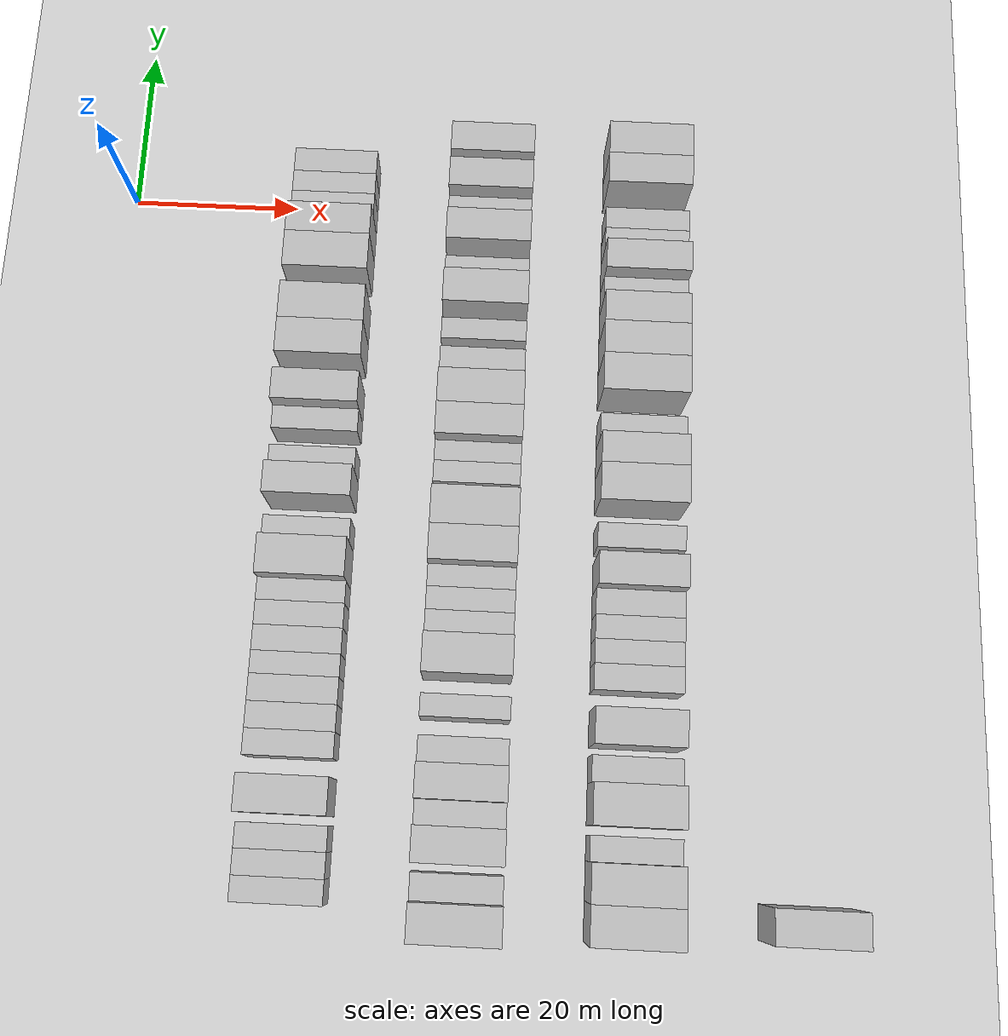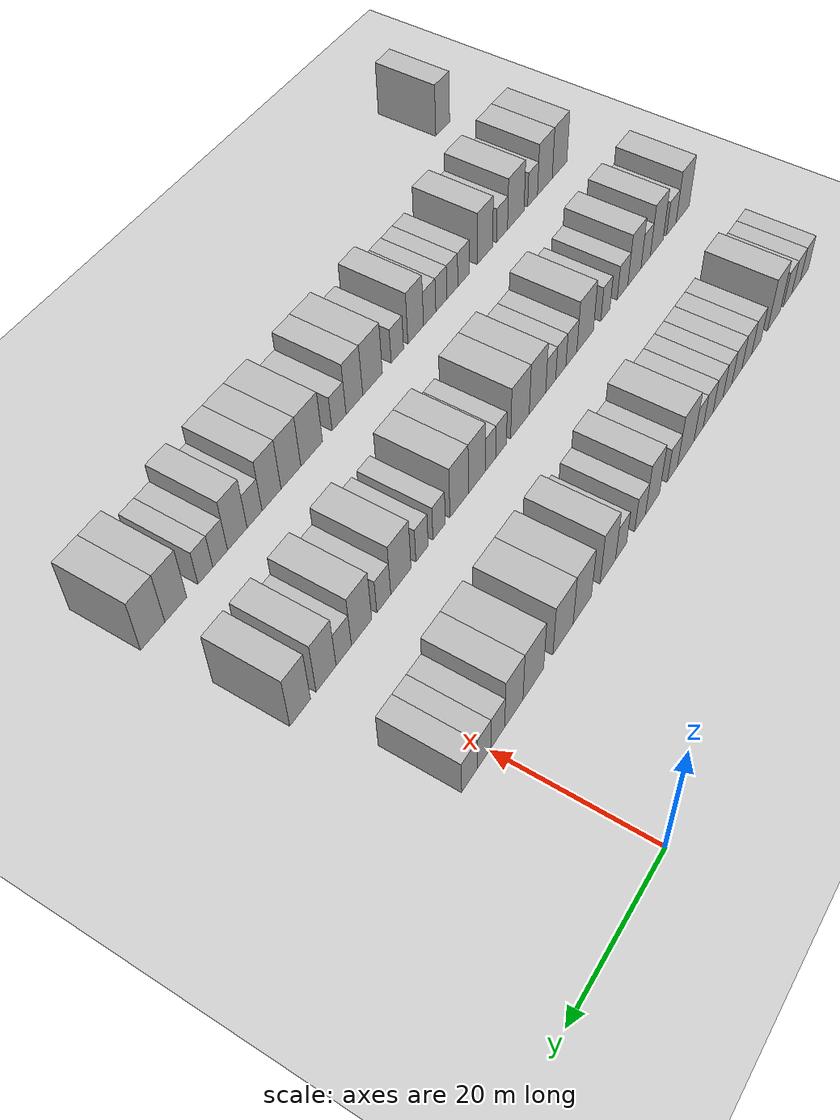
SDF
<sdf version="1.6">
 <world name="default">
  <include><name>ground_plane_1</name><uri>model://HANNAS_ground_plane</uri></include>
  <model name="building_60">
   <static>1</static>
   <pose>25.0000 -80.9285 0 0.000000 0.000000 0.000000</pose>
   <link name="link">
    <pose>0 0 3.00 0 0 0</pose>
    <collision name="collision"><geometry><box><size>10.0000 2.7186 6.0000</size></box></geometry></collision>
    <visual name="visual">
     <cast_shadows>0</cast_shadows>
     <geometry><box><size>10.0000 2.7186 6.0000</size></box></geometry>
     <material>
      <script>
       <uri>model://HANNAS_wall/materials/scripts</uri>
       <uri>model://HANNAS_wall/materials/textures</uri>
       <name>vrc/HANNAS_wall</name>
      </script>
     </material>
    </visual>
   </link>
  </model>
  <model name="building_61">
   <static>1</static>
   <pose>25.0000 -78.1866 0 0.000000 0.000000 0.000000</pose>
   <link name="link">
    <pose>0 0 3.00 0 0 0</pose>
    <collision name="collision"><geometry><box><size>10.0000 2.7652 6.0000</size></box></geometry></collision>
    <visual name="visual">
     <cast_shadows>0</cast_shadows>
     <geometry><box><size>10.0000 2.7652 6.0000</size></box></geometry>
     <material>
      <script>
       <uri>model://HANNAS_wall/materials/scripts</uri>
       <uri>model://HANNAS_wall/materials/textures</uri>
       <name>vrc/HANNAS_wall</name>
      </script>
     </material>
    </visual>
   </link>
  </model>
  <model name="building_62">
   <static>1</static>
   <pose>25.0000 -75.4488 0 0.000000 0.000000 0.000000</pose>
   <link name="link">
    <pose>0 0 3.00 0 0 0</pose>
    <collision name="collision"><geometry><box><size>10.0000 2.7102 6.0000</size></box></geometry></collision>
    <visual name="visual">
     <cast_shadows>0</cast_shadows>
     <geometry><box><size>10.0000 2.7102 6.0000</size></box></geometry>
     <material>
      <script>
       <uri>model://HANNAS_wall/materials/scripts</uri>
       <uri>model://HANNAS_wall/materials/textures</uri>
       <name>vrc/HANNAS_wall</name>
      </script>
     </material>
    </visual>
   </link>
  </model>
  <model name="building_63">
   <static>1</static>
   <pose>25.0000 -71.0811 0 0.000000 0.000000 0.000000</pose>
   <link name="link">
    <pose>0 0 4.50 0 0 0</pose>
    <collision name="collision"><geometry><box><size>10.0000 4.0253 9.0000</size></box></geometry></collision>
    <visual name="visual">
     <cast_shadows>0</cast_shadows>
     <geometry><box><size>10.0000 4.0253 9.0000</size></box></geometry>
     <material>
      <script>
       <uri>model://HANNAS_wall/materials/scripts</uri>
       <uri>model://HANNAS_wall/materials/textures</uri>
       <name>vrc/HANNAS_wall</name>
      </script>
     </material>
    </visual>
   </link>
  </model>
  <model name="building_64">
   <static>1</static>
   <pose>25.0000 -65.6351 0 0.000000 0.000000 0.000000</pose>
   <link name="link">
    <pose>0 0 3.00 0 0 0</pose>
    <collision name="collision"><geometry><box><size>10.0000 2.8665 6.0000</size></box></geometry></collision>
    <visual name="visual">
     <cast_shadows>0</cast_shadows>
     <geometry><box><size>10.0000 2.8665 6.0000</size></box></geometry>
     <material>
      <script>
       <uri>model://HANNAS_wall/materials/scripts</uri>
       <uri>model://HANNAS_wall/materials/textures</uri>
       <name>vrc/HANNAS_wall</name>
      </script>
     </material>
    </visual>
   </link>
  </model>
  <model name="building_65">
   <static>1</static>
   <pose>25.0000 -62.7355 0 0.000000 0.000000 0.000000</pose>
   <link name="link">
    <pose>0 0 3.00 0 0 0</pose>
    <collision name="collision"><geometry><box><size>10.0000 2.9329 6.0000</size></box></geometry></collision>
    <visual name="visual">
     <cast_shadows>0</cast_shadows>
     <geometry><box><size>10.0000 2.9329 6.0000</size></box></geometry>
     <material>
      <script>
       <uri>model://HANNAS_wall/materials/scripts</uri>
       <uri>model://HANNAS_wall/materials/textures</uri>
       <name>vrc/HANNAS_wall</name>
      </script>
     </material>
    </visual>
   </link>
  </model>
  <model name="building_66">
   <static>1</static>
   <pose>25.0000 -59.7765 0 0.000000 0.000000 0.000000</pose>
   <link name="link">
    <pose>0 0 3.00 0 0 0</pose>
    <collision name="collision"><geometry><box><size>10.0000 2.9850 6.0000</size></box></geometry></collision>
    <visual name="visual">
     <cast_shadows>0</cast_shadows>
     <geometry><box><size>10.0000 2.9850 6.0000</size></box></geometry>
     <material>
      <script>
       <uri>model://HANNAS_wall/materials/scripts</uri>
       <uri>model://HANNAS_wall/materials/textures</uri>
       <name>vrc/HANNAS_wall</name>
      </script>
     </material>
    </visual>
   </link>
  </model>
  <model name="building_67">
   <static>1</static>
   <pose>25.0000 -57.0158 0 0.000000 0.000000 0.000000</pose>
   <link name="link">
    <pose>0 0 3.00 0 0 0</pose>
    <collision name="collision"><geometry><box><size>10.0000 2.5364 6.0000</size></box></geometry></collision>
    <visual name="visual">
     <cast_shadows>0</cast_shadows>
     <geometry><box><size>10.0000 2.5364 6.0000</size></box></geometry>
     <material>
      <script>
       <uri>model://HANNAS_wall/materials/scripts</uri>
       <uri>model://HANNAS_wall/materials/textures</uri>
       <name>vrc/HANNAS_wall</name>
      </script>
     </material>
    </visual>
   </link>
  </model>
  <model name="building_68">
   <static>1</static>
   <pose>25.0000 -54.3093 0 0.000000 0.000000 0.000000</pose>
   <link name="link">
    <pose>0 0 3.00 0 0 0</pose>
    <collision name="collision"><geometry><box><size>10.0000 2.8766 6.0000</size></box></geometry></collision>
    <visual name="visual">
     <cast_shadows>0</cast_shadows>
     <geometry><box><size>10.0000 2.8766 6.0000</size></box></geometry>
     <material>
      <script>
       <uri>model://HANNAS_wall/materials/scripts</uri>
       <uri>model://HANNAS_wall/materials/textures</uri>
       <name>vrc/HANNAS_wall</name>
      </script>
     </material>
    </visual>
   </link>
  </model>
  <model name="building_69">
   <static>1</static>
   <pose>25.0000 -51.4867 0 0.000000 0.000000 0.000000</pose>
   <link name="link">
    <pose>0 0 3.00 0 0 0</pose>
    <collision name="collision"><geometry><box><size>10.0000 2.7686 6.0000</size></box></geometry></collision>
    <visual name="visual">
     <cast_shadows>0</cast_shadows>
     <geometry><box><size>10.0000 2.7686 6.0000</size></box></geometry>
     <material>
      <script>
       <uri>model://HANNAS_wall/materials/scripts</uri>
       <uri>model://HANNAS_wall/materials/textures</uri>
       <name>vrc/HANNAS_wall</name>
      </script>
     </material>
    </visual>
   </link>
  </model>
  <model name="building_70">
   <static>1</static>
   <pose>25.0000 -48.8435 0 0.000000 0.000000 0.000000</pose>
   <link name="link">
    <pose>0 0 3.00 0 0 0</pose>
    <collision name="collision"><geometry><box><size>10.0000 2.5179 6.0000</size></box></geometry></collision>
    <visual name="visual">
     <cast_shadows>0</cast_shadows>
     <geometry><box><size>10.0000 2.5179 6.0000</size></box></geometry>
     <material>
      <script>
       <uri>model://HANNAS_wall/materials/scripts</uri>
       <uri>model://HANNAS_wall/materials/textures</uri>
       <name>vrc/HANNAS_wall</name>
      </script>
     </material>
    </visual>
   </link>
  </model>
  <model name="building_71">
   <static>1</static>
   <pose>25.0000 -45.3656 0 0.000000 0.000000 0.000000</pose>
   <link name="link">
    <pose>0 0 4.50 0 0 0</pose>
    <collision name="collision"><geometry><box><size>10.0000 4.4378 9.0000</size></box></geometry></collision>
    <visual name="visual">
     <cast_shadows>0</cast_shadows>
     <geometry><box><size>10.0000 4.4378 9.0000</size></box></geometry>
     <material>
      <script>
       <uri>model://HANNAS_wall/materials/scripts</uri>
       <uri>model://HANNAS_wall/materials/textures</uri>
       <name>vrc/HANNAS_wall</name>
      </script>
     </material>
    </visual>
   </link>
  </model>
  <model name="building_72">
   <static>1</static>
   <pose>25.0000 -41.7919 0 0.000000 0.000000 0.000000</pose>
   <link name="link">
    <pose>0 0 3.00 0 0 0</pose>
    <collision name="collision"><geometry><box><size>10.0000 2.7097 6.0000</size></box></geometry></collision>
    <visual name="visual">
     <cast_shadows>0</cast_shadows>
     <geometry><box><size>10.0000 2.7097 6.0000</size></box></geometry>
     <material>
      <script>
       <uri>model://HANNAS_wall/materials/scripts</uri>
       <uri>model://HANNAS_wall/materials/textures</uri>
       <name>vrc/HANNAS_wall</name>
      </script>
     </material>
    </visual>
   </link>
  </model>
  <model name="building_73">
   <static>1</static>
   <pose>25.0000 -36.6315 0 0.000000 0.000000 0.000000</pose>
   <link name="link">
    <pose>0 0 4.50 0 0 0</pose>
    <collision name="collision"><geometry><box><size>10.0000 3.6111 9.0000</size></box></geometry></collision>
    <visual name="visual">
     <cast_shadows>0</cast_shadows>
     <geometry><box><size>10.0000 3.6111 9.0000</size></box></geometry>
     <material>
      <script>
       <uri>model://HANNAS_wall/materials/scripts</uri>
       <uri>model://HANNAS_wall/materials/textures</uri>
       <name>vrc/HANNAS_wall</name>
      </script>
     </material>
    </visual>
   </link>
  </model>
  <model name="building_74">
   <static>1</static>
   <pose>25.0000 -33.4904 0 0.000000 0.000000 0.000000</pose>
   <link name="link">
    <pose>0 0 3.00 0 0 0</pose>
    <collision name="collision"><geometry><box><size>10.0000 2.6710 6.0000</size></box></geometry></collision>
    <visual name="visual">
     <cast_shadows>0</cast_shadows>
     <geometry><box><size>10.0000 2.6710 6.0000</size></box></geometry>
     <material>
      <script>
       <uri>model://HANNAS_wall/materials/scripts</uri>
       <uri>model://HANNAS_wall/materials/textures</uri>
       <name>vrc/HANNAS_wall</name>
      </script>
     </material>
    </visual>
   </link>
  </model>
  <model name="building_75">
   <static>1</static>
   <pose>25.0000 -28.8069 0 0.000000 0.000000 0.000000</pose>
   <link name="link">
    <pose>0 0 3.00 0 0 0</pose>
    <collision name="collision"><geometry><box><size>10.0000 2.6961 6.0000</size></box></geometry></collision>
    <visual name="visual">
     <cast_shadows>0</cast_shadows>
     <geometry><box><size>10.0000 2.6961 6.0000</size></box></geometry>
     <material>
      <script>
       <uri>model://HANNAS_wall/materials/scripts</uri>
       <uri>model://HANNAS_wall/materials/textures</uri>
       <name>vrc/HANNAS_wall</name>
      </script>
     </material>
    </visual>
   </link>
  </model>
  <model name="building_76">
   <static>1</static>
   <pose>25.0000 -25.6282 0 0.000000 0.000000 0.000000</pose>
   <link name="link">
    <pose>0 0 4.50 0 0 0</pose>
    <collision name="collision"><geometry><box><size>10.0000 3.6612 9.0000</size></box></geometry></collision>
    <visual name="visual">
     <cast_shadows>0</cast_shadows>
     <geometry><box><size>10.0000 3.6612 9.0000</size></box></geometry>
     <material>
      <script>
       <uri>model://HANNAS_wall/materials/scripts</uri>
       <uri>model://HANNAS_wall/materials/textures</uri>
       <name>vrc/HANNAS_wall</name>
      </script>
     </material>
    </visual>
   </link>
  </model>
  <model name="building_77">
   <static>1</static>
   <pose>25.0000 -19.7110 0 0.000000 0.000000 0.000000</pose>
   <link name="link">
    <pose>0 0 4.50 0 0 0</pose>
    <collision name="collision"><geometry><box><size>10.0000 4.1733 9.0000</size></box></geometry></collision>
    <visual name="visual">
     <cast_shadows>0</cast_shadows>
     <geometry><box><size>10.0000 4.1733 9.0000</size></box></geometry>
     <material>
      <script>
       <uri>model://HANNAS_wall/materials/scripts</uri>
       <uri>model://HANNAS_wall/materials/textures</uri>
       <name>vrc/HANNAS_wall</name>
      </script>
     </material>
    </visual>
   </link>
  </model>
  <model name="building_78">
   <static>1</static>
   <pose>25.0000 -15.3900 0 0.000000 0.000000 0.000000</pose>
   <link name="link">
    <pose>0 0 4.50 0 0 0</pose>
    <collision name="collision"><geometry><box><size>10.0000 4.4688 9.0000</size></box></geometry></collision>
    <visual name="visual">
     <cast_shadows>0</cast_shadows>
     <geometry><box><size>10.0000 4.4688 9.0000</size></box></geometry>
     <material>
      <script>
       <uri>model://HANNAS_wall/materials/scripts</uri>
       <uri>model://HANNAS_wall/materials/textures</uri>
       <name>vrc/HANNAS_wall</name>
      </script>
     </material>
    </visual>
   </link>
  </model>
  <model name="building_79">
   <static>1</static>
   <pose>25.0000 -8.9664 0 0.000000 0.000000 0.000000</pose>
   <link name="link">
    <pose>0 0 4.50 0 0 0</pose>
    <collision name="collision"><geometry><box><size>10.0000 4.3785 9.0000</size></box></geometry></collision>
    <visual name="visual">
     <cast_shadows>0</cast_shadows>
     <geometry><box><size>10.0000 4.3785 9.0000</size></box></geometry>
     <material>
      <script>
       <uri>model://HANNAS_wall/materials/scripts</uri>
       <uri>model://HANNAS_wall/materials/textures</uri>
       <name>vrc/HANNAS_wall</name>
      </script>
     </material>
    </visual>
   </link>
  </model>
  <model name="building_80">
   <static>1</static>
   <pose>25.0000 -4.9013 0 0.000000 0.000000 0.000000</pose>
   <link name="link">
    <pose>0 0 4.50 0 0 0</pose>
    <collision name="collision"><geometry><box><size>10.0000 3.7516 9.0000</size></box></geometry></collision>
    <visual name="visual">
     <cast_shadows>0</cast_shadows>
     <geometry><box><size>10.0000 3.7516 9.0000</size></box></geometry>
     <material>
      <script>
       <uri>model://HANNAS_wall/materials/scripts</uri>
       <uri>model://HANNAS_wall/materials/textures</uri>
       <name>vrc/HANNAS_wall</name>
      </script>
     </material>
    </visual>
   </link>
  </model>
  <model name="building_81">
   <static>1</static>
   <pose>25.0000 -1.6287 0 0.000000 0.000000 0.000000</pose>
   <link name="link">
    <pose>0 0 3.00 0 0 0</pose>
    <collision name="collision"><geometry><box><size>10.0000 2.7936 6.0000</size></box></geometry></collision>
    <visual name="visual">
     <cast_shadows>0</cast_shadows>
     <geometry><box><size>10.0000 2.7936 6.0000</size></box></geometry>
     <material>
      <script>
       <uri>model://HANNAS_wall/materials/scripts</uri>
       <uri>model://HANNAS_wall/materials/textures</uri>
       <name>vrc/HANNAS_wall</name>
      </script>
     </material>
    </visual>
   </link>
  </model>
  <model name="building_82">
   <static>1</static>
   <pose>25.0000 1.0984 0 0.000000 0.000000 0.000000</pose>
   <link name="link">
    <pose>0 0 3.00 0 0 0</pose>
    <collision name="collision"><geometry><box><size>10.0000 2.6606 6.0000</size></box></geometry></collision>
    <visual name="visual">
     <cast_shadows>0</cast_shadows>
     <geometry><box><size>10.0000 2.6606 6.0000</size></box></geometry>
     <material>
      <script>
       <uri>model://HANNAS_wall/materials/scripts</uri>
       <uri>model://HANNAS_wall/materials/textures</uri>
       <name>vrc/HANNAS_wall</name>
      </script>
     </material>
    </visual>
   </link>
  </model>
  <model name="building_83">
   <static>1</static>
   <pose>25.0000 3.9197 0 0.000000 0.000000 0.000000</pose>
   <link name="link">
    <pose>0 0 3.00 0 0 0</pose>
    <collision name="collision"><geometry><box><size>10.0000 2.9820 6.0000</size></box></geometry></collision>
    <visual name="visual">
     <cast_shadows>0</cast_shadows>
     <geometry><box><size>10.0000 2.9820 6.0000</size></box></geometry>
     <material>
      <script>
       <uri>model://HANNAS_wall/materials/scripts</uri>
       <uri>model://HANNAS_wall/materials/textures</uri>
       <name>vrc/HANNAS_wall</name>
      </script>
     </material>
    </visual>
   </link>
  </model>
  <model name="building_235">
   <static>1</static>
   <pose>44.0000 -83.3016 0 0.000000 0.000000 0.000000</pose>
   <link name="link">
    <pose>0 0 4.50 0 0 0</pose>
    <collision name="collision"><geometry><box><size>10.0000 4.1042 9.0000</size></box></geometry></collision>
    <visual name="visual">
     <cast_shadows>0</cast_shadows>
     <geometry><box><size>10.0000 4.1042 9.0000</size></box></geometry>
     <material>
      <script>
       <uri>model://HANNAS_wall/materials/scripts</uri>
       <uri>model://HANNAS_wall/materials/textures</uri>
       <name>vrc/HANNAS_wall</name>
      </script>
     </material>
    </visual>
   </link>
  </model>
  <model name="building_236">
   <static>1</static>
   <pose>44.0000 -79.7862 0 0.000000 0.000000 0.000000</pose>
   <link name="link">
    <pose>0 0 3.00 0 0 0</pose>
    <collision name="collision"><geometry><box><size>10.0000 2.9267 6.0000</size></box></geometry></collision>
    <visual name="visual">
     <cast_shadows>0</cast_shadows>
     <geometry><box><size>10.0000 2.9267 6.0000</size></box></geometry>
     <material>
      <script>
       <uri>model://HANNAS_wall/materials/scripts</uri>
       <uri>model://HANNAS_wall/materials/textures</uri>
       <name>vrc/HANNAS_wall</name>
      </script>
     </material>
    </visual>
   </link>
  </model>
  <model name="building_237">
   <static>1</static>
   <pose>44.0000 -75.4104 0 0.000000 0.000000 0.000000</pose>
   <link name="link">
    <pose>0 0 4.50 0 0 0</pose>
    <collision name="collision"><geometry><box><size>10.0000 3.8250 9.0000</size></box></geometry></collision>
    <visual name="visual">
     <cast_shadows>0</cast_shadows>
     <geometry><box><size>10.0000 3.8250 9.0000</size></box></geometry>
     <material>
      <script>
       <uri>model://HANNAS_wall/materials/scripts</uri>
       <uri>model://HANNAS_wall/materials/textures</uri>
       <name>vrc/HANNAS_wall</name>
      </script>
     </material>
    </visual>
   </link>
  </model>
  <model name="building_238">
   <static>1</static>
   <pose>44.0000 -72.1419 0 0.000000 0.000000 0.000000</pose>
   <link name="link">
    <pose>0 0 3.00 0 0 0</pose>
    <collision name="collision"><geometry><box><size>10.0000 2.7119 6.0000</size></box></geometry></collision>
    <visual name="visual">
     <cast_shadows>0</cast_shadows>
     <geometry><box><size>10.0000 2.7119 6.0000</size></box></geometry>
     <material>
      <script>
       <uri>model://HANNAS_wall/materials/scripts</uri>
       <uri>model://HANNAS_wall/materials/textures</uri>
       <name>vrc/HANNAS_wall</name>
      </script>
     </material>
    </visual>
   </link>
  </model>
  <model name="building_239">
   <static>1</static>
   <pose>44.0000 -68.8907 0 0.000000 0.000000 0.000000</pose>
   <link name="link">
    <pose>0 0 4.50 0 0 0</pose>
    <collision name="collision"><geometry><box><size>10.0000 3.7905 9.0000</size></box></geometry></collision>
    <visual name="visual">
     <cast_shadows>0</cast_shadows>
     <geometry><box><size>10.0000 3.7905 9.0000</size></box></geometry>
     <material>
      <script>
       <uri>model://HANNAS_wall/materials/scripts</uri>
       <uri>model://HANNAS_wall/materials/textures</uri>
       <name>vrc/HANNAS_wall</name>
      </script>
     </material>
    </visual>
   </link>
  </model>
  <model name="building_240">
   <static>1</static>
   <pose>44.0000 -65.5052 0 0.000000 0.000000 0.000000</pose>
   <link name="link">
    <pose>0 0 3.00 0 0 0</pose>
    <collision name="collision"><geometry><box><size>10.0000 2.9804 6.0000</size></box></geometry></collision>
    <visual name="visual">
     <cast_shadows>0</cast_shadows>
     <geometry><box><size>10.0000 2.9804 6.0000</size></box></geometry>
     <material>
      <script>
       <uri>model://HANNAS_wall/materials/scripts</uri>
       <uri>model://HANNAS_wall/materials/textures</uri>
       <name>vrc/HANNAS_wall</name>
      </script>
     </material>
    </visual>
   </link>
  </model>
  <model name="building_241">
   <static>1</static>
   <pose>44.0000 -60.7576 0 0.000000 0.000000 0.000000</pose>
   <link name="link">
    <pose>0 0 3.00 0 0 0</pose>
    <collision name="collision"><geometry><box><size>10.0000 2.5147 6.0000</size></box></geometry></collision>
    <visual name="visual">
     <cast_shadows>0</cast_shadows>
     <geometry><box><size>10.0000 2.5147 6.0000</size></box></geometry>
     <material>
      <script>
       <uri>model://HANNAS_wall/materials/scripts</uri>
       <uri>model://HANNAS_wall/materials/textures</uri>
       <name>vrc/HANNAS_wall</name>
      </script>
     </material>
    </visual>
   </link>
  </model>
  <model name="building_242">
   <static>1</static>
   <pose>44.0000 -55.2933 0 0.000000 0.000000 0.000000</pose>
   <link name="link">
    <pose>0 0 4.50 0 0 0</pose>
    <collision name="collision"><geometry><box><size>10.0000 4.4139 9.0000</size></box></geometry></collision>
    <visual name="visual">
     <cast_shadows>0</cast_shadows>
     <geometry><box><size>10.0000 4.4139 9.0000</size></box></geometry>
     <material>
      <script>
       <uri>model://HANNAS_wall/materials/scripts</uri>
       <uri>model://HANNAS_wall/materials/textures</uri>
       <name>vrc/HANNAS_wall</name>
      </script>
     </material>
    </visual>
   </link>
  </model>
  <model name="building_243">
   <static>1</static>
   <pose>44.0000 -51.6725 0 0.000000 0.000000 0.000000</pose>
   <link name="link">
    <pose>0 0 3.00 0 0 0</pose>
    <collision name="collision"><geometry><box><size>10.0000 2.8277 6.0000</size></box></geometry></collision>
    <visual name="visual">
     <cast_shadows>0</cast_shadows>
     <geometry><box><size>10.0000 2.8277 6.0000</size></box></geometry>
     <material>
      <script>
       <uri>model://HANNAS_wall/materials/scripts</uri>
       <uri>model://HANNAS_wall/materials/textures</uri>
       <name>vrc/HANNAS_wall</name>
      </script>
     </material>
    </visual>
   </link>
  </model>
  <model name="building_244">
   <static>1</static>
   <pose>44.0000 -48.9577 0 0.000000 0.000000 0.000000</pose>
   <link name="link">
    <pose>0 0 3.00 0 0 0</pose>
    <collision name="collision"><geometry><box><size>10.0000 2.6020 6.0000</size></box></geometry></collision>
    <visual name="visual">
     <cast_shadows>0</cast_shadows>
     <geometry><box><size>10.0000 2.6020 6.0000</size></box></geometry>
     <material>
      <script>
       <uri>model://HANNAS_wall/materials/scripts</uri>
       <uri>model://HANNAS_wall/materials/textures</uri>
       <name>vrc/HANNAS_wall</name>
      </script>
     </material>
    </visual>
   </link>
  </model>
  <model name="building_245">
   <static>1</static>
   <pose>44.0000 -46.3977 0 0.000000 0.000000 0.000000</pose>
   <link name="link">
    <pose>0 0 3.00 0 0 0</pose>
    <collision name="collision"><geometry><box><size>10.0000 2.5180 6.0000</size></box></geometry></collision>
    <visual name="visual">
     <cast_shadows>0</cast_shadows>
     <geometry><box><size>10.0000 2.5180 6.0000</size></box></geometry>
     <material>
      <script>
       <uri>model://HANNAS_wall/materials/scripts</uri>
       <uri>model://HANNAS_wall/materials/textures</uri>
       <name>vrc/HANNAS_wall</name>
      </script>
     </material>
    </visual>
   </link>
  </model>
  <model name="building_246">
   <static>1</static>
   <pose>44.0000 -43.1047 0 0.000000 0.000000 0.000000</pose>
   <link name="link">
    <pose>0 0 4.50 0 0 0</pose>
    <collision name="collision"><geometry><box><size>10.0000 4.0679 9.0000</size></box></geometry></collision>
    <visual name="visual">
     <cast_shadows>0</cast_shadows>
     <geometry><box><size>10.0000 4.0679 9.0000</size></box></geometry>
     <material>
      <script>
       <uri>model://HANNAS_wall/materials/scripts</uri>
       <uri>model://HANNAS_wall/materials/textures</uri>
       <name>vrc/HANNAS_wall</name>
      </script>
     </material>
    </visual>
   </link>
  </model>
  <model name="building_247">
   <static>1</static>
   <pose>44.0000 -38.8373 0 0.000000 0.000000 0.000000</pose>
   <link name="link">
    <pose>0 0 4.50 0 0 0</pose>
    <collision name="collision"><geometry><box><size>10.0000 4.4671 9.0000</size></box></geometry></collision>
    <visual name="visual">
     <cast_shadows>0</cast_shadows>
     <geometry><box><size>10.0000 4.4671 9.0000</size></box></geometry>
     <material>
      <script>
       <uri>model://HANNAS_wall/materials/scripts</uri>
       <uri>model://HANNAS_wall/materials/textures</uri>
       <name>vrc/HANNAS_wall</name>
      </script>
     </material>
    </visual>
   </link>
  </model>
  <model name="building_248">
   <static>1</static>
   <pose>44.0000 -34.3466 0 0.000000 0.000000 0.000000</pose>
   <link name="link">
    <pose>0 0 3.00 0 0 0</pose>
    <collision name="collision"><geometry><box><size>10.0000 2.5142 6.0000</size></box></geometry></collision>
    <visual name="visual">
     <cast_shadows>0</cast_shadows>
     <geometry><box><size>10.0000 2.5142 6.0000</size></box></geometry>
     <material>
      <script>
       <uri>model://HANNAS_wall/materials/scripts</uri>
       <uri>model://HANNAS_wall/materials/textures</uri>
       <name>vrc/HANNAS_wall</name>
      </script>
     </material>
    </visual>
   </link>
  </model>
  <model name="building_249">
   <static>1</static>
   <pose>44.0000 -31.8850 0 0.000000 0.000000 0.000000</pose>
   <link name="link">
    <pose>0 0 3.00 0 0 0</pose>
    <collision name="collision"><geometry><box><size>10.0000 2.4091 6.0000</size></box></geometry></collision>
    <visual name="visual">
     <cast_shadows>0</cast_shadows>
     <geometry><box><size>10.0000 2.4091 6.0000</size></box></geometry>
     <material>
      <script>
       <uri>model://HANNAS_wall/materials/scripts</uri>
       <uri>model://HANNAS_wall/materials/textures</uri>
       <name>vrc/HANNAS_wall</name>
      </script>
     </material>
    </visual>
   </link>
  </model>
  <model name="building_250">
   <static>1</static>
   <pose>44.0000 -28.7894 0 0.000000 0.000000 0.000000</pose>
   <link name="link">
    <pose>0 0 4.50 0 0 0</pose>
    <collision name="collision"><geometry><box><size>10.0000 3.7820 9.0000</size></box></geometry></collision>
    <visual name="visual">
     <cast_shadows>0</cast_shadows>
     <geometry><box><size>10.0000 3.7820 9.0000</size></box></geometry>
     <material>
      <script>
       <uri>model://HANNAS_wall/materials/scripts</uri>
       <uri>model://HANNAS_wall/materials/textures</uri>
       <name>vrc/HANNAS_wall</name>
      </script>
     </material>
    </visual>
   </link>
  </model>
  <model name="building_251">
   <static>1</static>
   <pose>44.0000 -24.8723 0 0.000000 0.000000 0.000000</pose>
   <link name="link">
    <pose>0 0 4.50 0 0 0</pose>
    <collision name="collision"><geometry><box><size>10.0000 4.0521 9.0000</size></box></geometry></collision>
    <visual name="visual">
     <cast_shadows>0</cast_shadows>
     <geometry><box><size>10.0000 4.0521 9.0000</size></box></geometry>
     <material>
      <script>
       <uri>model://HANNAS_wall/materials/scripts</uri>
       <uri>model://HANNAS_wall/materials/textures</uri>
       <name>vrc/HANNAS_wall</name>
      </script>
     </material>
    </visual>
   </link>
  </model>
  <model name="building_252">
   <static>1</static>
   <pose>44.0000 -20.5295 0 0.000000 0.000000 0.000000</pose>
   <link name="link">
    <pose>0 0 3.00 0 0 0</pose>
    <collision name="collision"><geometry><box><size>10.0000 2.6336 6.0000</size></box></geometry></collision>
    <visual name="visual">
     <cast_shadows>0</cast_shadows>
     <geometry><box><size>10.0000 2.6336 6.0000</size></box></geometry>
     <material>
      <script>
       <uri>model://HANNAS_wall/materials/scripts</uri>
       <uri>model://HANNAS_wall/materials/textures</uri>
       <name>vrc/HANNAS_wall</name>
      </script>
     </material>
    </visual>
   </link>
  </model>
  <model name="building_253">
   <static>1</static>
   <pose>44.0000 -16.9329 0 0.000000 0.000000 0.000000</pose>
   <link name="link">
    <pose>0 0 3.00 0 0 0</pose>
    <collision name="collision"><geometry><box><size>10.0000 2.5597 6.0000</size></box></geometry></collision>
    <visual name="visual">
     <cast_shadows>0</cast_shadows>
     <geometry><box><size>10.0000 2.5597 6.0000</size></box></geometry>
     <material>
      <script>
       <uri>model://HANNAS_wall/materials/scripts</uri>
       <uri>model://HANNAS_wall/materials/textures</uri>
       <name>vrc/HANNAS_wall</name>
      </script>
     </material>
    </visual>
   </link>
  </model>
  <model name="building_254">
   <static>1</static>
   <pose>44.0000 -12.5995 0 0.000000 0.000000 0.000000</pose>
   <link name="link">
    <pose>0 0 4.50 0 0 0</pose>
    <collision name="collision"><geometry><box><size>10.0000 4.1069 9.0000</size></box></geometry></collision>
    <visual name="visual">
     <cast_shadows>0</cast_shadows>
     <geometry><box><size>10.0000 4.1069 9.0000</size></box></geometry>
     <material>
      <script>
       <uri>model://HANNAS_wall/materials/scripts</uri>
       <uri>model://HANNAS_wall/materials/textures</uri>
       <name>vrc/HANNAS_wall</name>
      </script>
     </material>
    </visual>
   </link>
  </model>
  <model name="building_255">
   <static>1</static>
   <pose>44.0000 -9.1677 0 0.000000 0.000000 0.000000</pose>
   <link name="link">
    <pose>0 0 3.00 0 0 0</pose>
    <collision name="collision"><geometry><box><size>10.0000 2.7568 6.0000</size></box></geometry></collision>
    <visual name="visual">
     <cast_shadows>0</cast_shadows>
     <geometry><box><size>10.0000 2.7568 6.0000</size></box></geometry>
     <material>
      <script>
       <uri>model://HANNAS_wall/materials/scripts</uri>
       <uri>model://HANNAS_wall/materials/textures</uri>
       <name>vrc/HANNAS_wall</name>
      </script>
     </material>
    </visual>
   </link>
  </model>
  <model name="building_256">
   <static>1</static>
   <pose>44.0000 -4.8382 0 0.000000 0.000000 0.000000</pose>
   <link name="link">
    <pose>0 0 4.50 0 0 0</pose>
    <collision name="collision"><geometry><box><size>10.0000 3.9023 9.0000</size></box></geometry></collision>
    <visual name="visual">
     <cast_shadows>0</cast_shadows>
     <geometry><box><size>10.0000 3.9023 9.0000</size></box></geometry>
     <material>
      <script>
       <uri>model://HANNAS_wall/materials/scripts</uri>
       <uri>model://HANNAS_wall/materials/textures</uri>
       <name>vrc/HANNAS_wall</name>
      </script>
     </material>
    </visual>
   </link>
  </model>
  <model name="building_257">
   <static>1</static>
   <pose>44.0000 -1.4462 0 0.000000 0.000000 0.000000</pose>
   <link name="link">
    <pose>0 0 3.00 0 0 0</pose>
    <collision name="collision"><geometry><box><size>10.0000 2.8817 6.0000</size></box></geometry></collision>
    <visual name="visual">
     <cast_shadows>0</cast_shadows>
     <geometry><box><size>10.0000 2.8817 6.0000</size></box></geometry>
     <material>
      <script>
       <uri>model://HANNAS_wall/materials/scripts</uri>
       <uri>model://HANNAS_wall/materials/textures</uri>
       <name>vrc/HANNAS_wall</name>
      </script>
     </material>
    </visual>
   </link>
  </model>
  <model name="building_258">
   <static>1</static>
   <pose>44.0000 1.8365 0 0.000000 0.000000 0.000000</pose>
   <link name="link">
    <pose>0 0 4.50 0 0 0</pose>
    <collision name="collision"><geometry><box><size>10.0000 3.6837 9.0000</size></box></geometry></collision>
    <visual name="visual">
     <cast_shadows>0</cast_shadows>
     <geometry><box><size>10.0000 3.6837 9.0000</size></box></geometry>
     <material>
      <script>
       <uri>model://HANNAS_wall/materials/scripts</uri>
       <uri>model://HANNAS_wall/materials/textures</uri>
       <name>vrc/HANNAS_wall</name>
      </script>
     </material>
    </visual>
   </link>
  </model>
  <model name="building_259">
   <static>1</static>
   <pose>44.0000 6.5169 0 0.000000 0.000000 0.000000</pose>
   <link name="link">
    <pose>0 0 4.50 0 0 0</pose>
    <collision name="collision"><geometry><box><size>10.0000 3.6770 9.0000</size></box></geometry></collision>
    <visual name="visual">
     <cast_shadows>0</cast_shadows>
     <geometry><box><size>10.0000 3.6770 9.0000</size></box></geometry>
     <material>
      <script>
       <uri>model://HANNAS_wall/materials/scripts</uri>
       <uri>model://HANNAS_wall/materials/textures</uri>
       <name>vrc/HANNAS_wall</name>
      </script>
     </material>
    </visual>
   </link>
  </model>
  <model name="building_402">
   <static>1</static>
   <pose>63.0000 -82.6671 0 0.000000 0.000000 0.000000</pose>
   <link name="link">
    <pose>0 0 4.50 0 0 0</pose>
    <collision name="collision"><geometry><box><size>10.0000 4.2342 9.0000</size></box></geometry></collision>
    <visual name="visual">
     <cast_shadows>0</cast_shadows>
     <geometry><box><size>10.0000 4.2342 9.0000</size></box></geometry>
     <material>
      <script>
       <uri>model://HANNAS_wall/materials/scripts</uri>
       <uri>model://HANNAS_wall/materials/textures</uri>
       <name>vrc/HANNAS_wall</name>
      </script>
     </material>
    </visual>
   </link>
  </model>
  <model name="building_403">
   <static>1</static>
   <pose>63.0000 -78.4565 0 0.000000 0.000000 0.000000</pose>
   <link name="link">
    <pose>0 0 4.50 0 0 0</pose>
    <collision name="collision"><geometry><box><size>10.0000 4.1870 9.0000</size></box></geometry></collision>
    <visual name="visual">
     <cast_shadows>0</cast_shadows>
     <geometry><box><size>10.0000 4.1870 9.0000</size></box></geometry>
     <material>
      <script>
       <uri>model://HANNAS_wall/materials/scripts</uri>
       <uri>model://HANNAS_wall/materials/textures</uri>
       <name>vrc/HANNAS_wall</name>
      </script>
     </material>
    </visual>
   </link>
  </model>
  <model name="building_404">
   <static>1</static>
   <pose>63.0000 -74.9948 0 0.000000 0.000000 0.000000</pose>
   <link name="link">
    <pose>0 0 3.00 0 0 0</pose>
    <collision name="collision"><geometry><box><size>10.0000 2.7365 6.0000</size></box></geometry></collision>
    <visual name="visual">
     <cast_shadows>0</cast_shadows>
     <geometry><box><size>10.0000 2.7365 6.0000</size></box></geometry>
     <material>
      <script>
       <uri>model://HANNAS_wall/materials/scripts</uri>
       <uri>model://HANNAS_wall/materials/textures</uri>
       <name>vrc/HANNAS_wall</name>
      </script>
     </material>
    </visual>
   </link>
  </model>
  <model name="building_405">
   <static>1</static>
   <pose>63.0000 -70.3854 0 0.000000 0.000000 0.000000</pose>
   <link name="link">
    <pose>0 0 4.50 0 0 0</pose>
    <collision name="collision"><geometry><box><size>10.0000 4.4822 9.0000</size></box></geometry></collision>
    <visual name="visual">
     <cast_shadows>0</cast_shadows>
     <geometry><box><size>10.0000 4.4822 9.0000</size></box></geometry>
     <material>
      <script>
       <uri>model://HANNAS_wall/materials/scripts</uri>
       <uri>model://HANNAS_wall/materials/textures</uri>
       <name>vrc/HANNAS_wall</name>
      </script>
     </material>
    </visual>
   </link>
  </model>
  <model name="building_406">
   <static>1</static>
   <pose>63.0000 -66.6799 0 0.000000 0.000000 0.000000</pose>
   <link name="link">
    <pose>0 0 3.00 0 0 0</pose>
    <collision name="collision"><geometry><box><size>10.0000 2.9289 6.0000</size></box></geometry></collision>
    <visual name="visual">
     <cast_shadows>0</cast_shadows>
     <geometry><box><size>10.0000 2.9289 6.0000</size></box></geometry>
     <material>
      <script>
       <uri>model://HANNAS_wall/materials/scripts</uri>
       <uri>model://HANNAS_wall/materials/textures</uri>
       <name>vrc/HANNAS_wall</name>
      </script>
     </material>
    </visual>
   </link>
  </model>
  <model name="building_407">
   <static>1</static>
   <pose>63.0000 -62.2234 0 0.000000 0.000000 0.000000</pose>
   <link name="link">
    <pose>0 0 4.50 0 0 0</pose>
    <collision name="collision"><geometry><box><size>10.0000 3.9841 9.0000</size></box></geometry></collision>
    <visual name="visual">
     <cast_shadows>0</cast_shadows>
     <geometry><box><size>10.0000 3.9841 9.0000</size></box></geometry>
     <material>
      <script>
       <uri>model://HANNAS_wall/materials/scripts</uri>
       <uri>model://HANNAS_wall/materials/textures</uri>
       <name>vrc/HANNAS_wall</name>
      </script>
     </material>
    </visual>
   </link>
  </model>
  <model name="building_408">
   <static>1</static>
   <pose>63.0000 -56.7619 0 0.000000 0.000000 0.000000</pose>
   <link name="link">
    <pose>0 0 3.00 0 0 0</pose>
    <collision name="collision"><geometry><box><size>10.0000 2.9390 6.0000</size></box></geometry></collision>
    <visual name="visual">
     <cast_shadows>0</cast_shadows>
     <geometry><box><size>10.0000 2.9390 6.0000</size></box></geometry>
     <material>
      <script>
       <uri>model://HANNAS_wall/materials/scripts</uri>
       <uri>model://HANNAS_wall/materials/textures</uri>
       <name>vrc/HANNAS_wall</name>
      </script>
     </material>
    </visual>
   </link>
  </model>
  <model name="building_409">
   <static>1</static>
   <pose>63.0000 -53.9407 0 0.000000 0.000000 0.000000</pose>
   <link name="link">
    <pose>0 0 3.00 0 0 0</pose>
    <collision name="collision"><geometry><box><size>10.0000 2.7033 6.0000</size></box></geometry></collision>
    <visual name="visual">
     <cast_shadows>0</cast_shadows>
     <geometry><box><size>10.0000 2.7033 6.0000</size></box></geometry>
     <material>
      <script>
       <uri>model://HANNAS_wall/materials/scripts</uri>
       <uri>model://HANNAS_wall/materials/textures</uri>
       <name>vrc/HANNAS_wall</name>
      </script>
     </material>
    </visual>
   </link>
  </model>
  <model name="building_410">
   <static>1</static>
   <pose>63.0000 -51.2415 0 0.000000 0.000000 0.000000</pose>
   <link name="link">
    <pose>0 0 3.00 0 0 0</pose>
    <collision name="collision"><geometry><box><size>10.0000 2.6951 6.0000</size></box></geometry></collision>
    <visual name="visual">
     <cast_shadows>0</cast_shadows>
     <geometry><box><size>10.0000 2.6951 6.0000</size></box></geometry>
     <material>
      <script>
       <uri>model://HANNAS_wall/materials/scripts</uri>
       <uri>model://HANNAS_wall/materials/textures</uri>
       <name>vrc/HANNAS_wall</name>
      </script>
     </material>
    </visual>
   </link>
  </model>
  <model name="building_411">
   <static>1</static>
   <pose>63.0000 -48.4262 0 0.000000 0.000000 0.000000</pose>
   <link name="link">
    <pose>0 0 3.00 0 0 0</pose>
    <collision name="collision"><geometry><box><size>10.0000 2.9355 6.0000</size></box></geometry></collision>
    <visual name="visual">
     <cast_shadows>0</cast_shadows>
     <geometry><box><size>10.0000 2.9355 6.0000</size></box></geometry>
     <material>
      <script>
       <uri>model://HANNAS_wall/materials/scripts</uri>
       <uri>model://HANNAS_wall/materials/textures</uri>
       <name>vrc/HANNAS_wall</name>
      </script>
     </material>
    </visual>
   </link>
  </model>
  <model name="building_412">
   <static>1</static>
   <pose>63.0000 -45.1135 0 0.000000 0.000000 0.000000</pose>
   <link name="link">
    <pose>0 0 4.50 0 0 0</pose>
    <collision name="collision"><geometry><box><size>10.0000 3.6898 9.0000</size></box></geometry></collision>
    <visual name="visual">
     <cast_shadows>0</cast_shadows>
     <geometry><box><size>10.0000 3.6898 9.0000</size></box></geometry>
     <material>
      <script>
       <uri>model://HANNAS_wall/materials/scripts</uri>
       <uri>model://HANNAS_wall/materials/textures</uri>
       <name>vrc/HANNAS_wall</name>
      </script>
     </material>
    </visual>
   </link>
  </model>
  <model name="building_413">
   <static>1</static>
   <pose>63.0000 -40.8482 0 0.000000 0.000000 0.000000</pose>
   <link name="link">
    <pose>0 0 3.00 0 0 0</pose>
    <collision name="collision"><geometry><box><size>10.0000 2.8407 6.0000</size></box></geometry></collision>
    <visual name="visual">
     <cast_shadows>0</cast_shadows>
     <geometry><box><size>10.0000 2.8407 6.0000</size></box></geometry>
     <material>
      <script>
       <uri>model://HANNAS_wall/materials/scripts</uri>
       <uri>model://HANNAS_wall/materials/textures</uri>
       <name>vrc/HANNAS_wall</name>
      </script>
     </material>
    </visual>
   </link>
  </model>
  <model name="building_414">
   <static>1</static>
   <pose>63.0000 -35.2593 0 0.000000 0.000000 0.000000</pose>
   <link name="link">
    <pose>0 0 4.50 0 0 0</pose>
    <collision name="collision"><geometry><box><size>10.0000 4.3371 9.0000</size></box></geometry></collision>
    <visual name="visual">
     <cast_shadows>0</cast_shadows>
     <geometry><box><size>10.0000 4.3371 9.0000</size></box></geometry>
     <material>
      <script>
       <uri>model://HANNAS_wall/materials/scripts</uri>
       <uri>model://HANNAS_wall/materials/textures</uri>
       <name>vrc/HANNAS_wall</name>
      </script>
     </material>
    </visual>
   </link>
  </model>
  <model name="building_415">
   <static>1</static>
   <pose>63.0000 -31.2834 0 0.000000 0.000000 0.000000</pose>
   <link name="link">
    <pose>0 0 4.50 0 0 0</pose>
    <collision name="collision"><geometry><box><size>10.0000 3.6147 9.0000</size></box></geometry></collision>
    <visual name="visual">
     <cast_shadows>0</cast_shadows>
     <geometry><box><size>10.0000 3.6147 9.0000</size></box></geometry>
     <material>
      <script>
       <uri>model://HANNAS_wall/materials/scripts</uri>
       <uri>model://HANNAS_wall/materials/textures</uri>
       <name>vrc/HANNAS_wall</name>
      </script>
     </material>
    </visual>
   </link>
  </model>
  <model name="building_416">
   <static>1</static>
   <pose>63.0000 -27.9911 0 0.000000 0.000000 0.000000</pose>
   <link name="link">
    <pose>0 0 3.00 0 0 0</pose>
    <collision name="collision"><geometry><box><size>10.0000 2.9698 6.0000</size></box></geometry></collision>
    <visual name="visual">
     <cast_shadows>0</cast_shadows>
     <geometry><box><size>10.0000 2.9698 6.0000</size></box></geometry>
     <material>
      <script>
       <uri>model://HANNAS_wall/materials/scripts</uri>
       <uri>model://HANNAS_wall/materials/textures</uri>
       <name>vrc/HANNAS_wall</name>
      </script>
     </material>
    </visual>
   </link>
  </model>
  <model name="building_417">
   <static>1</static>
   <pose>63.0000 -22.2875 0 0.000000 0.000000 0.000000</pose>
   <link name="link">
    <pose>0 0 4.50 0 0 0</pose>
    <collision name="collision"><geometry><box><size>10.0000 4.4375 9.0000</size></box></geometry></collision>
    <visual name="visual">
     <cast_shadows>0</cast_shadows>
     <geometry><box><size>10.0000 4.4375 9.0000</size></box></geometry>
     <material>
      <script>
       <uri>model://HANNAS_wall/materials/scripts</uri>
       <uri>model://HANNAS_wall/materials/textures</uri>
       <name>vrc/HANNAS_wall</name>
      </script>
     </material>
    </visual>
   </link>
  </model>
  <model name="building_418">
   <static>1</static>
   <pose>63.0000 -18.0937 0 0.000000 0.000000 0.000000</pose>
   <link name="link">
    <pose>0 0 4.50 0 0 0</pose>
    <collision name="collision"><geometry><box><size>10.0000 3.9501 9.0000</size></box></geometry></collision>
    <visual name="visual">
     <cast_shadows>0</cast_shadows>
     <geometry><box><size>10.0000 3.9501 9.0000</size></box></geometry>
     <material>
      <script>
       <uri>model://HANNAS_wall/materials/scripts</uri>
       <uri>model://HANNAS_wall/materials/textures</uri>
       <name>vrc/HANNAS_wall</name>
      </script>
     </material>
    </visual>
   </link>
  </model>
  <model name="building_419">
   <static>1</static>
   <pose>63.0000 -14.2713 0 0.000000 0.000000 0.000000</pose>
   <link name="link">
    <pose>0 0 4.50 0 0 0</pose>
    <collision name="collision"><geometry><box><size>10.0000 3.6946 9.0000</size></box></geometry></collision>
    <visual name="visual">
     <cast_shadows>0</cast_shadows>
     <geometry><box><size>10.0000 3.6946 9.0000</size></box></geometry>
     <material>
      <script>
       <uri>model://HANNAS_wall/materials/scripts</uri>
       <uri>model://HANNAS_wall/materials/textures</uri>
       <name>vrc/HANNAS_wall</name>
      </script>
     </material>
    </visual>
   </link>
  </model>
  <model name="building_420">
   <static>1</static>
   <pose>63.0000 -10.9978 0 0.000000 0.000000 0.000000</pose>
   <link name="link">
    <pose>0 0 3.00 0 0 0</pose>
    <collision name="collision"><geometry><box><size>10.0000 2.8526 6.0000</size></box></geometry></collision>
    <visual name="visual">
     <cast_shadows>0</cast_shadows>
     <geometry><box><size>10.0000 2.8526 6.0000</size></box></geometry>
     <material>
      <script>
       <uri>model://HANNAS_wall/materials/scripts</uri>
       <uri>model://HANNAS_wall/materials/textures</uri>
       <name>vrc/HANNAS_wall</name>
      </script>
     </material>
    </visual>
   </link>
  </model>
  <model name="building_421">
   <static>1</static>
   <pose>63.0000 -7.7510 0 0.000000 0.000000 0.000000</pose>
   <link name="link">
    <pose>0 0 4.50 0 0 0</pose>
    <collision name="collision"><geometry><box><size>10.0000 3.6410 9.0000</size></box></geometry></collision>
    <visual name="visual">
     <cast_shadows>0</cast_shadows>
     <geometry><box><size>10.0000 3.6410 9.0000</size></box></geometry>
     <material>
      <script>
       <uri>model://HANNAS_wall/materials/scripts</uri>
       <uri>model://HANNAS_wall/materials/textures</uri>
       <name>vrc/HANNAS_wall</name>
      </script>
     </material>
    </visual>
   </link>
  </model>
  <model name="building_422">
   <static>1</static>
   <pose>63.0000 -4.5832 0 0.000000 0.000000 0.000000</pose>
   <link name="link">
    <pose>0 0 3.00 0 0 0</pose>
    <collision name="collision"><geometry><box><size>10.0000 2.6946 6.0000</size></box></geometry></collision>
    <visual name="visual">
     <cast_shadows>0</cast_shadows>
     <geometry><box><size>10.0000 2.6946 6.0000</size></box></geometry>
     <material>
      <script>
       <uri>model://HANNAS_wall/materials/scripts</uri>
       <uri>model://HANNAS_wall/materials/textures</uri>
       <name>vrc/HANNAS_wall</name>
      </script>
     </material>
    </visual>
   </link>
  </model>
  <model name="building_423">
   <static>1</static>
   <pose>63.0000 -1.9102 0 0.000000 0.000000 0.000000</pose>
   <link name="link">
    <pose>0 0 3.00 0 0 0</pose>
    <collision name="collision"><geometry><box><size>10.0000 2.6514 6.0000</size></box></geometry></collision>
    <visual name="visual">
     <cast_shadows>0</cast_shadows>
     <geometry><box><size>10.0000 2.6514 6.0000</size></box></geometry>
     <material>
      <script>
       <uri>model://HANNAS_wall/materials/scripts</uri>
       <uri>model://HANNAS_wall/materials/textures</uri>
       <name>vrc/HANNAS_wall</name>
      </script>
     </material>
    </visual>
   </link>
  </model>
  <model name="building_424">
   <static>1</static>
   <pose>63.0000 3.3013 0 0.000000 0.000000 0.000000</pose>
   <link name="link">
    <pose>0 0 4.50 0 0 0</pose>
    <collision name="collision"><geometry><box><size>10.0000 3.7717 9.0000</size></box></geometry></collision>
    <visual name="visual">
     <cast_shadows>0</cast_shadows>
     <geometry><box><size>10.0000 3.7717 9.0000</size></box></geometry>
     <material>
      <script>
       <uri>model://HANNAS_wall/materials/scripts</uri>
       <uri>model://HANNAS_wall/materials/textures</uri>
       <name>vrc/HANNAS_wall</name>
      </script>
     </material>
    </visual>
   </link>
  </model>
  <model name="building_425">
   <static>1</static>
   <pose>63.0000 7.2405 0 0.000000 0.000000 0.000000</pose>
   <link name="link">
    <pose>0 0 4.50 0 0 0</pose>
    <collision name="collision"><geometry><box><size>10.0000 4.1066 9.0000</size></box></geometry></collision>
    <visual name="visual">
     <cast_shadows>0</cast_shadows>
     <geometry><box><size>10.0000 4.1066 9.0000</size></box></geometry>
     <material>
      <script>
       <uri>model://HANNAS_wall/materials/scripts</uri>
       <uri>model://HANNAS_wall/materials/textures</uri>
       <name>vrc/HANNAS_wall</name>
      </script>
     </material>
    </visual>
   </link>
  </model>
  <model name="building_570">
   <static>1</static>
   <pose>82.0000 -81.8412 0 0.000000 0.000000 0.000000</pose>
   <link name="link">
    <pose>0 0 4.50 0 0 0</pose>
    <collision name="collision"><geometry><box><size>10.0000 3.7796 9.0000</size></box></geometry></collision>
    <visual name="visual">
     <cast_shadows>0</cast_shadows>
     <geometry><box><size>10.0000 3.7796 9.0000</size></box></geometry>
     <material>
      <script>
       <uri>model://HANNAS_wall/materials/scripts</uri>
       <uri>model://HANNAS_wall/materials/textures</uri>
       <name>vrc/HANNAS_wall</name>
      </script>
     </material>
    </visual>
   </link>
  </model>
 </world>
</sdf>
